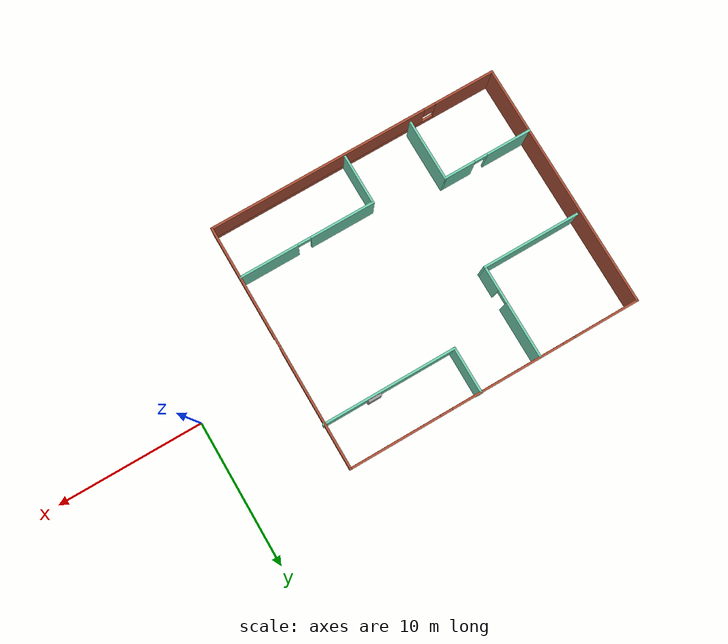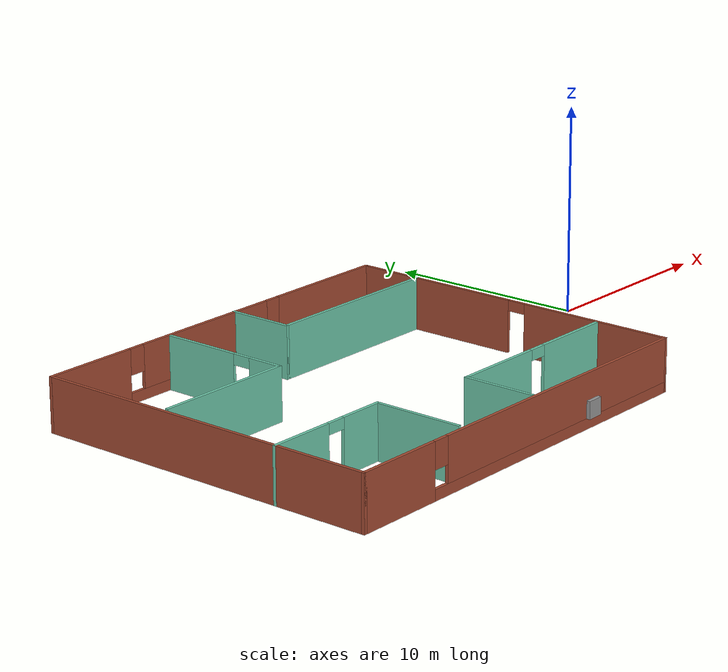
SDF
<?xml version='1.0'?>
<sdf version='1.6'>
  <model name='ZilinWorld'>
    <pose frame=''>-16.5659 -1.35848 0 0 -0 0</pose>
    <link name='Door_4'>
      <collision name='Door_4_Collision'>
        <geometry>
          <box>
            <size>0.9 0.17 2</size>
          </box>
        </geometry>
        <pose frame=''>0 0 1 0 -0 0</pose>
      </collision>
      <visual name='Door_4_Visual'>
        <pose frame=''>0 0 1 0 -0 0</pose>
        <geometry>
          <box>
            <size>0.9 0.17 2</size>
          </box>
        </geometry>
        <material>
          <script>
            <uri>file://media/materials/scripts/gazebo.material</uri>
            <name>Gazebo/Grey</name>
          </script>
        </material>
      </visual>
      <pose frame=''>6.60846 5.49315 0 0 -0 0</pose>
    </link>
    <link name='Wall_11'>
      <pose frame=''>-0.036147 8.40851 0 0 -0 0</pose>
      <visual name='Wall_11_Visual_0'>
        <pose frame=''>-7.84832 0 1.25 0 -0 0</pose>
        <geometry>
          <box>
            <size>4.55336 0.15 2.5</size>
          </box>
        </geometry>
        <material>
          <script>
            <uri>file://media/materials/scripts/gazebo.material</uri>
            <name>Gazebo/Bricks</name>
          </script>
          <ambient>1 1 1 1</ambient>
        </material>
        <meta>
          <layer>0</layer>
        </meta>
      </visual>
      <collision name='Wall_11_Collision_0'>
        <geometry>
          <box>
            <size>4.55336 0.15 2.5</size>
          </box>
        </geometry>
        <pose frame=''>-7.84832 0 1.25 0 -0 0</pose>
      </collision>
      <visual name='Wall_11_Visual_1'>
        <pose frame=''>2.27668 0 0.25 0 -0 0</pose>
        <geometry>
          <box>
            <size>15.6966 0.15 0.5</size>
          </box>
        </geometry>
        <material>
          <script>
            <uri>file://media/materials/scripts/gazebo.material</uri>
            <name>Gazebo/Bricks</name>
          </script>
          <ambient>1 1 1 1</ambient>
        </material>
        <meta>
          <layer>0</layer>
        </meta>
      </visual>
      <collision name='Wall_11_Collision_1'>
        <geometry>
          <box>
            <size>15.6966 0.15 0.5</size>
          </box>
        </geometry>
        <pose frame=''>2.27668 0 0.25 0 -0 0</pose>
      </collision>
      <visual name='Wall_11_Visual_2'>
        <pose frame=''>-0.86734 0 1.5 0 -0 0</pose>
        <geometry>
          <box>
            <size>7.80861 0.15 2</size>
          </box>
        </geometry>
        <material>
          <script>
            <uri>file://media/materials/scripts/gazebo.material</uri>
            <name>Gazebo/Bricks</name>
          </script>
          <ambient>1 1 1 1</ambient>
        </material>
        <meta>
          <layer>0</layer>
        </meta>
      </visual>
      <collision name='Wall_11_Collision_2'>
        <geometry>
          <box>
            <size>7.80861 0.15 2</size>
          </box>
        </geometry>
        <pose frame=''>-0.86734 0 1.5 0 -0 0</pose>
      </collision>
      <visual name='Wall_11_Visual_3'>
        <pose frame=''>6.98098 0 1.5 0 -0 0</pose>
        <geometry>
          <box>
            <size>6.28803 0.15 2</size>
          </box>
        </geometry>
        <material>
          <script>
            <uri>file://media/materials/scripts/gazebo.material</uri>
            <name>Gazebo/Bricks</name>
          </script>
          <ambient>1 1 1 1</ambient>
        </material>
        <meta>
          <layer>0</layer>
        </meta>
      </visual>
      <collision name='Wall_11_Collision_3'>
        <geometry>
          <box>
            <size>6.28803 0.15 2</size>
          </box>
        </geometry>
        <pose frame=''>6.98098 0 1.5 0 -0 0</pose>
      </collision>
      <visual name='Wall_11_Visual_4'>
        <pose frame=''>-5.17164 0 1.9 0 -0 0</pose>
        <geometry>
          <box>
            <size>0.8 0.15 1.2</size>
          </box>
        </geometry>
        <material>
          <script>
            <uri>file://media/materials/scripts/gazebo.material</uri>
            <name>Gazebo/Bricks</name>
          </script>
          <ambient>1 1 1 1</ambient>
        </material>
        <meta>
          <layer>0</layer>
        </meta>
      </visual>
      <collision name='Wall_11_Collision_4'>
        <geometry>
          <box>
            <size>0.8 0.15 1.2</size>
          </box>
        </geometry>
        <pose frame=''>-5.17164 0 1.9 0 -0 0</pose>
      </collision>
      <visual name='Wall_11_Visual_5'>
        <pose frame=''>3.43696 0 1.9 0 -0 0</pose>
        <geometry>
          <box>
            <size>0.8 0.15 1.2</size>
          </box>
        </geometry>
        <material>
          <script>
            <uri>file://media/materials/scripts/gazebo.material</uri>
            <name>Gazebo/Bricks</name>
          </script>
          <ambient>1 1 1 1</ambient>
        </material>
        <meta>
          <layer>0</layer>
        </meta>
      </visual>
      <collision name='Wall_11_Collision_5'>
        <geometry>
          <box>
            <size>0.8 0.15 1.2</size>
          </box>
        </geometry>
        <pose frame=''>3.43696 0 1.9 0 -0 0</pose>
      </collision>
    </link>
    <link name='Wall_13'>
      <collision name='Wall_13_Collision'>
        <geometry>
          <box>
            <size>3.25 0.15 2.5</size>
          </box>
        </geometry>
        <pose frame=''>0 0 1.25 0 -0 0</pose>
      </collision>
      <visual name='Wall_13_Visual'>
        <pose frame=''>0 0 1.25 0 -0 0</pose>
        <geometry>
          <box>
            <size>3.25 0.15 2.5</size>
          </box>
        </geometry>
        <material>
          <script>
            <uri>file://media/materials/scripts/gazebo.material</uri>
            <name>Gazebo/Grey</name>
          </script>
          <ambient>0.435294 0.796078 0.67451 1</ambient>
        </material>
        <meta>
          <layer>0</layer>
        </meta>
      </visual>
      <pose frame=''>0.98719 6.89149 0 0 0 -1.5708</pose>
    </link>
    <link name='Wall_14'>
      <collision name='Wall_14_Collision'>
        <geometry>
          <box>
            <size>9.25 0.15 2.5</size>
          </box>
        </geometry>
        <pose frame=''>0 0 1.25 0 -0 0</pose>
      </collision>
      <visual name='Wall_14_Visual'>
        <pose frame=''>0 0 1.25 0 -0 0</pose>
        <geometry>
          <box>
            <size>9.25 0.15 2.5</size>
          </box>
        </geometry>
        <material>
          <script>
            <uri>file://media/materials/scripts/gazebo.material</uri>
            <name>Gazebo/Grey</name>
          </script>
          <ambient>0.435294 0.796078 0.67451 1</ambient>
        </material>
        <meta>
          <layer>0</layer>
        </meta>
      </visual>
      <pose frame=''>5.53719 5.34149 0 0 -0 0</pose>
    </link>
    <link name='Wall_16'>
      <pose frame=''>-3.19643 5.18604 0 0 0 -1.5708</pose>
      <visual name='Wall_16_Visual_0'>
        <pose frame=''>-1.3079 0 1.25 0 -0 0</pose>
        <geometry>
          <box>
            <size>3.88419 0.15 2.5</size>
          </box>
        </geometry>
        <material>
          <script>
            <uri>file://media/materials/scripts/gazebo.material</uri>
            <name>Gazebo/Grey</name>
          </script>
          <ambient>0.435294 0.796078 0.67451 1</ambient>
        </material>
        <meta>
          <layer>0</layer>
        </meta>
      </visual>
      <collision name='Wall_16_Collision_0'>
        <geometry>
          <box>
            <size>3.88419 0.15 2.5</size>
          </box>
        </geometry>
        <pose frame=''>-1.3079 0 1.25 0 -0 0</pose>
      </collision>
      <visual name='Wall_16_Visual_1'>
        <pose frame=''>2.3921 0 1.25 0 -0 0</pose>
        <geometry>
          <box>
            <size>1.71581 0.15 2.5</size>
          </box>
        </geometry>
        <material>
          <script>
            <uri>file://media/materials/scripts/gazebo.material</uri>
            <name>Gazebo/Grey</name>
          </script>
          <ambient>0.435294 0.796078 0.67451 1</ambient>
        </material>
        <meta>
          <layer>0</layer>
        </meta>
      </visual>
      <collision name='Wall_16_Collision_1'>
        <geometry>
          <box>
            <size>1.71581 0.15 2.5</size>
          </box>
        </geometry>
        <pose frame=''>2.3921 0 1.25 0 -0 0</pose>
      </collision>
      <visual name='Wall_16_Visual_2'>
        <pose frame=''>1.08419 0 2.25 0 -0 0</pose>
        <geometry>
          <box>
            <size>0.9 0.15 0.5</size>
          </box>
        </geometry>
        <material>
          <script>
            <uri>file://media/materials/scripts/gazebo.material</uri>
            <name>Gazebo/Grey</name>
          </script>
          <ambient>0.435294 0.796078 0.67451 1</ambient>
        </material>
        <meta>
          <layer>0</layer>
        </meta>
      </visual>
      <collision name='Wall_16_Collision_2'>
        <geometry>
          <box>
            <size>0.9 0.15 0.5</size>
          </box>
        </geometry>
        <pose frame=''>1.08419 0 2.25 0 -0 0</pose>
      </collision>
    </link>
    <link name='Wall_20'>
      <collision name='Wall_20_Collision'>
        <geometry>
          <box>
            <size>6.75 0.15 2.5</size>
          </box>
        </geometry>
        <pose frame=''>0 0 1.25 0 -0 0</pose>
      </collision>
      <visual name='Wall_20_Visual'>
        <pose frame=''>0 0 1.25 0 -0 0</pose>
        <geometry>
          <box>
            <size>6.75 0.15 2.5</size>
          </box>
        </geometry>
        <material>
          <script>
            <uri>file://media/materials/scripts/gazebo.material</uri>
            <name>Gazebo/Grey</name>
          </script>
          <ambient>0.435294 0.796078 0.67451 1</ambient>
        </material>
        <meta>
          <layer>0</layer>
        </meta>
      </visual>
      <pose frame=''>-6.49643 2.01104 0 0 -0 3.14159</pose>
    </link>
    <link name='Wall_22'>
      <pose frame=''>-7.03719 -4.00401 0 0 -0 0</pose>
      <visual name='Wall_22_Visual_0'>
        <pose frame=''>-1.55825 0 1.25 0 -0 0</pose>
        <geometry>
          <box>
            <size>3.13351 0.15 2.5</size>
          </box>
        </geometry>
        <material>
          <script>
            <uri>file://media/materials/scripts/gazebo.material</uri>
            <name>Gazebo/Grey</name>
          </script>
          <ambient>0.435294 0.796078 0.67451 1</ambient>
        </material>
        <meta>
          <layer>0</layer>
        </meta>
      </visual>
      <collision name='Wall_22_Collision_0'>
        <geometry>
          <box>
            <size>3.13351 0.15 2.5</size>
          </box>
        </geometry>
        <pose frame=''>-1.55825 0 1.25 0 -0 0</pose>
      </collision>
      <visual name='Wall_22_Visual_1'>
        <pose frame=''>2.01675 0 1.25 0 -0 0</pose>
        <geometry>
          <box>
            <size>2.21649 0.15 2.5</size>
          </box>
        </geometry>
        <material>
          <script>
            <uri>file://media/materials/scripts/gazebo.material</uri>
            <name>Gazebo/Grey</name>
          </script>
          <ambient>0.435294 0.796078 0.67451 1</ambient>
        </material>
        <meta>
          <layer>0</layer>
        </meta>
      </visual>
      <collision name='Wall_22_Collision_1'>
        <geometry>
          <box>
            <size>2.21649 0.15 2.5</size>
          </box>
        </geometry>
        <pose frame=''>2.01675 0 1.25 0 -0 0</pose>
      </collision>
      <visual name='Wall_22_Visual_2'>
        <pose frame=''>0.458508 0 2.25 0 -0 0</pose>
        <geometry>
          <box>
            <size>0.9 0.15 0.5</size>
          </box>
        </geometry>
        <material>
          <script>
            <uri>file://media/materials/scripts/gazebo.material</uri>
            <name>Gazebo/Grey</name>
          </script>
          <ambient>0.435294 0.796078 0.67451 1</ambient>
        </material>
        <meta>
          <layer>0</layer>
        </meta>
      </visual>
      <collision name='Wall_22_Collision_2'>
        <geometry>
          <box>
            <size>0.9 0.15 0.5</size>
          </box>
        </geometry>
        <pose frame=''>0.458508 0 2.25 0 -0 0</pose>
      </collision>
    </link>
    <link name='Wall_23'>
      <collision name='Wall_23_Collision'>
        <geometry>
          <box>
            <size>4.25 0.15 2.5</size>
          </box>
        </geometry>
        <pose frame=''>0 0 1.25 0 -0 0</pose>
      </collision>
      <visual name='Wall_23_Visual'>
        <pose frame=''>0 0 1.25 0 -0 0</pose>
        <geometry>
          <box>
            <size>4.25 0.15 2.5</size>
          </box>
        </geometry>
        <material>
          <script>
            <uri>file://media/materials/scripts/gazebo.material</uri>
            <name>Gazebo/Grey</name>
          </script>
          <ambient>0.435294 0.796078 0.67451 1</ambient>
        </material>
        <meta>
          <layer>0</layer>
        </meta>
      </visual>
      <pose frame=''>-3.98719 -6.05401 0 0 0 -1.5708</pose>
    </link>
    <link name='Wall_25'>
      <pose frame=''>5.32099 -4.91139 0 0 -0 3.14159</pose>
      <visual name='Wall_25_Visual_0'>
        <pose frame=''>-2.69931 0 1.25 0 -0 0</pose>
        <geometry>
          <box>
            <size>4.10137 0.15 2.5</size>
          </box>
        </geometry>
        <material>
          <script>
            <uri>file://media/materials/scripts/gazebo.material</uri>
            <name>Gazebo/Grey</name>
          </script>
          <ambient>0.435294 0.796078 0.67451 1</ambient>
        </material>
        <meta>
          <layer>0</layer>
        </meta>
      </visual>
      <collision name='Wall_25_Collision_0'>
        <geometry>
          <box>
            <size>4.10137 0.15 2.5</size>
          </box>
        </geometry>
        <pose frame=''>-2.69931 0 1.25 0 -0 0</pose>
      </collision>
      <visual name='Wall_25_Visual_1'>
        <pose frame=''>2.50068 0 1.25 0 -0 0</pose>
        <geometry>
          <box>
            <size>4.49863 0.15 2.5</size>
          </box>
        </geometry>
        <material>
          <script>
            <uri>file://media/materials/scripts/gazebo.material</uri>
            <name>Gazebo/Grey</name>
          </script>
          <ambient>0.435294 0.796078 0.67451 1</ambient>
        </material>
        <meta>
          <layer>0</layer>
        </meta>
      </visual>
      <collision name='Wall_25_Collision_1'>
        <geometry>
          <box>
            <size>4.49863 0.15 2.5</size>
          </box>
        </geometry>
        <pose frame=''>2.50068 0 1.25 0 -0 0</pose>
      </collision>
      <visual name='Wall_25_Visual_2'>
        <pose frame=''>-0.198629 0 2.25 0 -0 0</pose>
        <geometry>
          <box>
            <size>0.9 0.15 0.5</size>
          </box>
        </geometry>
        <material>
          <script>
            <uri>file://media/materials/scripts/gazebo.material</uri>
            <name>Gazebo/Grey</name>
          </script>
          <ambient>0.435294 0.796078 0.67451 1</ambient>
        </material>
        <meta>
          <layer>0</layer>
        </meta>
      </visual>
      <collision name='Wall_25_Collision_2'>
        <geometry>
          <box>
            <size>0.9 0.15 0.5</size>
          </box>
        </geometry>
        <pose frame=''>-0.198629 0 2.25 0 -0 0</pose>
      </collision>
    </link>
    <link name='Wall_26'>
      <collision name='Wall_26_Collision'>
        <geometry>
          <box>
            <size>3.5 0.15 2.5</size>
          </box>
        </geometry>
        <pose frame=''>0 0 1.25 0 -0 0</pose>
      </collision>
      <visual name='Wall_26_Visual'>
        <pose frame=''>0 0 1.25 0 -0 0</pose>
        <geometry>
          <box>
            <size>3.5 0.15 2.5</size>
          </box>
        </geometry>
        <material>
          <script>
            <uri>file://media/materials/scripts/gazebo.material</uri>
            <name>Gazebo/Grey</name>
          </script>
          <ambient>0.435294 0.796078 0.67451 1</ambient>
        </material>
        <meta>
          <layer>0</layer>
        </meta>
      </visual>
      <pose frame=''>0.645986 -6.58639 0 0 0 -1.5708</pose>
    </link>
    <link name='Wall_6'>
      <collision name='Wall_6_Collision'>
        <geometry>
          <box>
            <size>17 0.15 2.5</size>
          </box>
        </geometry>
        <pose frame=''>0 0 1.25 0 -0 0</pose>
      </collision>
      <visual name='Wall_6_Visual'>
        <pose frame=''>0 0 1.25 0 -0 0</pose>
        <geometry>
          <box>
            <size>17 0.15 2.5</size>
          </box>
        </geometry>
        <material>
          <script>
            <uri>file://media/materials/scripts/gazebo.material</uri>
            <name>Gazebo/Bricks</name>
          </script>
          <ambient>1 1 1 1</ambient>
        </material>
        <meta>
          <layer>0</layer>
        </meta>
      </visual>
      <pose frame=''>-10.0861 -0.016492 0 0 0 -1.5708</pose>
    </link>
    <link name='Wall_7'>
      <pose frame=''>-0.036147 -8.44149 0 0 -0 0</pose>
      <visual name='Wall_7_Visual_0'>
        <pose frame=''>-8.00923 0 1.25 0 -0 0</pose>
        <geometry>
          <box>
            <size>4.23154 0.15 2.5</size>
          </box>
        </geometry>
        <material>
          <script>
            <uri>file://media/materials/scripts/gazebo.material</uri>
            <name>Gazebo/Bricks</name>
          </script>
          <ambient>1 1 1 1</ambient>
        </material>
        <meta>
          <layer>0</layer>
        </meta>
      </visual>
      <collision name='Wall_7_Collision_0'>
        <geometry>
          <box>
            <size>4.23154 0.15 2.5</size>
          </box>
        </geometry>
        <pose frame=''>-8.00923 0 1.25 0 -0 0</pose>
      </collision>
      <visual name='Wall_7_Visual_1'>
        <pose frame=''>2.11577 0 0.25 0 -0 0</pose>
        <geometry>
          <box>
            <size>16.0185 0.15 0.5</size>
          </box>
        </geometry>
        <material>
          <script>
            <uri>file://media/materials/scripts/gazebo.material</uri>
            <name>Gazebo/Bricks</name>
          </script>
          <ambient>1 1 1 1</ambient>
        </material>
        <meta>
          <layer>0</layer>
        </meta>
      </visual>
      <collision name='Wall_7_Collision_1'>
        <geometry>
          <box>
            <size>16.0185 0.15 0.5</size>
          </box>
        </geometry>
        <pose frame=''>2.11577 0 0.25 0 -0 0</pose>
      </collision>
      <visual name='Wall_7_Visual_2'>
        <pose frame=''>2.51577 0 1.5 0 -0 0</pose>
        <geometry>
          <box>
            <size>15.2185 0.15 2</size>
          </box>
        </geometry>
        <material>
          <script>
            <uri>file://media/materials/scripts/gazebo.material</uri>
            <name>Gazebo/Bricks</name>
          </script>
          <ambient>1 1 1 1</ambient>
        </material>
        <meta>
          <layer>0</layer>
        </meta>
      </visual>
      <collision name='Wall_7_Collision_2'>
        <geometry>
          <box>
            <size>15.2185 0.15 2</size>
          </box>
        </geometry>
        <pose frame=''>2.51577 0 1.5 0 -0 0</pose>
      </collision>
      <visual name='Wall_7_Visual_3'>
        <pose frame=''>-5.49346 0 1.9 0 -0 0</pose>
        <geometry>
          <box>
            <size>0.8 0.15 1.2</size>
          </box>
        </geometry>
        <material>
          <script>
            <uri>file://media/materials/scripts/gazebo.material</uri>
            <name>Gazebo/Bricks</name>
          </script>
          <ambient>1 1 1 1</ambient>
        </material>
        <meta>
          <layer>0</layer>
        </meta>
      </visual>
      <collision name='Wall_7_Collision_3'>
        <geometry>
          <box>
            <size>0.8 0.15 1.2</size>
          </box>
        </geometry>
        <pose frame=''>-5.49346 0 1.9 0 -0 0</pose>
      </collision>
    </link>
    <link name='Wall_8'>
      <pose frame=''>10.0139 -0.016492 0 0 -0 1.5708</pose>
      <visual name='Wall_8_Visual_0'>
        <pose frame=''>-4.71122 0 1.25 0 -0 0</pose>
        <geometry>
          <box>
            <size>7.57756 0.15 2.5</size>
          </box>
        </geometry>
        <material>
          <script>
            <uri>file://media/materials/scripts/gazebo.material</uri>
            <name>Gazebo/Bricks</name>
          </script>
          <ambient>1 1 1 1</ambient>
        </material>
        <meta>
          <layer>0</layer>
        </meta>
      </visual>
      <collision name='Wall_8_Collision_0'>
        <geometry>
          <box>
            <size>7.57756 0.15 2.5</size>
          </box>
        </geometry>
        <pose frame=''>-4.71122 0 1.25 0 -0 0</pose>
      </collision>
      <visual name='Wall_8_Visual_1'>
        <pose frame=''>4.23878 0 1.25 0 -0 0</pose>
        <geometry>
          <box>
            <size>8.52244 0.15 2.5</size>
          </box>
        </geometry>
        <material>
          <script>
            <uri>file://media/materials/scripts/gazebo.material</uri>
            <name>Gazebo/Bricks</name>
          </script>
          <ambient>1 1 1 1</ambient>
        </material>
        <meta>
          <layer>0</layer>
        </meta>
      </visual>
      <collision name='Wall_8_Collision_1'>
        <geometry>
          <box>
            <size>8.52244 0.15 2.5</size>
          </box>
        </geometry>
        <pose frame=''>4.23878 0 1.25 0 -0 0</pose>
      </collision>
      <visual name='Wall_8_Visual_2'>
        <pose frame=''>-0.472442 0 2.25 0 -0 0</pose>
        <geometry>
          <box>
            <size>0.9 0.15 0.5</size>
          </box>
        </geometry>
        <material>
          <script>
            <uri>file://media/materials/scripts/gazebo.material</uri>
            <name>Gazebo/Bricks</name>
          </script>
          <ambient>1 1 1 1</ambient>
        </material>
        <meta>
          <layer>0</layer>
        </meta>
      </visual>
      <collision name='Wall_8_Collision_2'>
        <geometry>
          <box>
            <size>0.9 0.15 0.5</size>
          </box>
        </geometry>
        <pose frame=''>-0.472442 0 2.25 0 -0 0</pose>
      </collision>
    </link>
    <link name='Window_1'>
      <collision name='Window_1_Collision'>
        <geometry>
          <box>
            <size>0.8 0.17 0.8</size>
          </box>
        </geometry>
        <pose frame=''>0 0 0.4 0 -0 0</pose>
      </collision>
      <visual name='Window_1_Visual'>
        <pose frame=''>0 0 0.4 0 -0 0</pose>
        <geometry>
          <box>
            <size>0.8 0.17 0.8</size>
          </box>
        </geometry>
        <material>
          <script>
            <uri>file://media/materials/scripts/gazebo.material</uri>
            <name>Gazebo/Grey</name>
          </script>
        </material>
      </visual>
      <pose frame=''>4.52718 -8.61482 0.5 0 -0 0</pose>
    </link>
    <static>1</static>
  </model>
</sdf>
